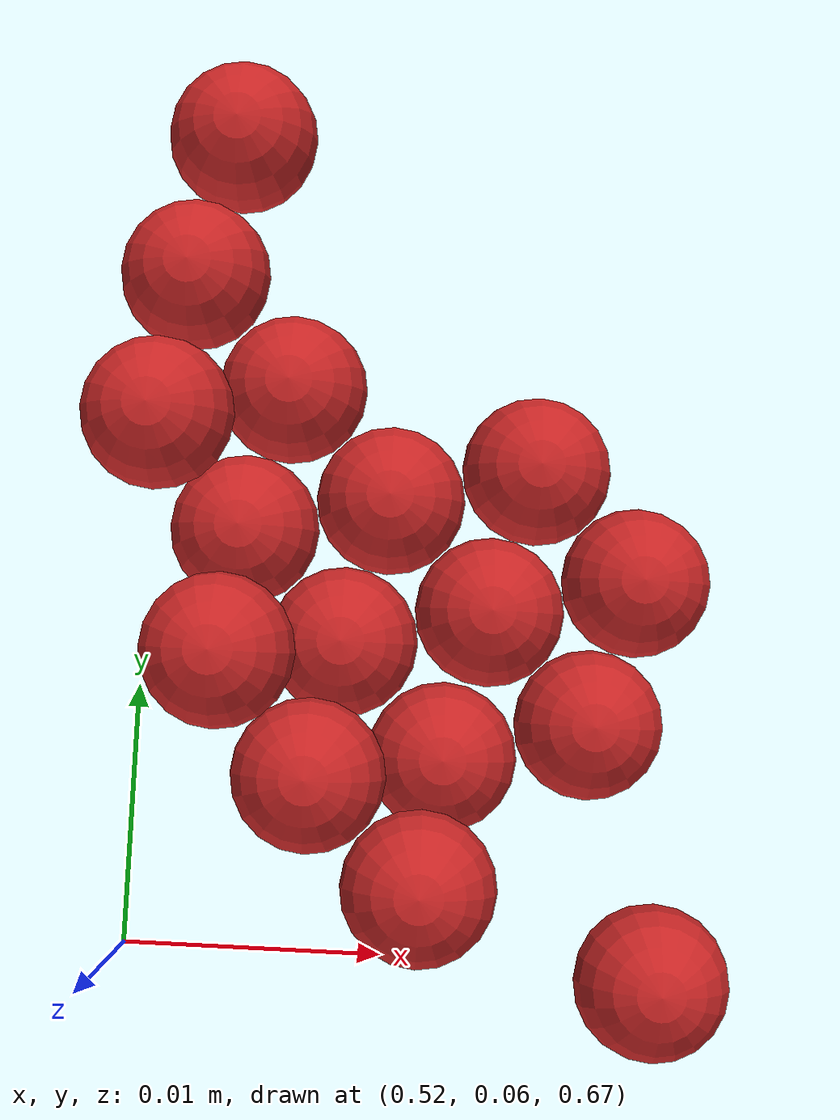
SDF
<sdf version="1.4">
 <world name="default">
  <model name="ground_plane">
   <static>1</static>
   <link name="link">
    <collision name="collision">
     <geometry><plane><normal>0 0 1</normal><size>100 100</size></plane></geometry>
     <surface><friction><ode><mu>100</mu><mu2>50</mu2></ode></friction></surface>
    </collision>
    <visual name="visual">
     <cast_shadows>0</cast_shadows>
     <geometry><plane><normal>0 0 1</normal><size>100 100</size></plane></geometry>
     <material>
      <script><uri>file://media/materials/scripts/gazebo.material</uri><name>Gazebo/Grey</name></script>
     </material>
    </visual>
    <velocity_decay><linear>0</linear><angular>0</angular></velocity_decay>
   </link>
  </model>
  <model name="sphere0">
   <pose>-0.002085 -0.000161 -0.026429 -0.000498 -0.00059 2.7e-05</pose>
   <link name="link">
    <pose>0.534545 0.067517 0.694885 0 -0 0</pose>
    <inertial>
     <mass>1e-08</mass>
     <inertia><ixx>4e-08</ixx><ixy>0</ixy><ixz>0</ixz><iyy>4e-08</iyy><iyz>0</iyz><izz>4e-08</izz></inertia>
    </inertial>
    <collision name="collision">
     <surface>
      <bounce><restitution_coefficient>0.5</restitution_coefficient><threshold>0</threshold></bounce>
      <contact><ode><kp>1e+08</kp><kd>1</kd></ode></contact>
      <friction><ode><mu>1e-06</mu><mu2>1e-06</mu2></ode></friction>
     </surface>
     <geometry><sphere><radius>0.003</radius></sphere></geometry>
    </collision>
    <visual name="visual">
     <geometry><sphere><radius>0.003</radius></sphere></geometry>
     <material>
      <script><uri>file://media/materials/scripts/gazebo.material</uri><name>Gazebo/Red</name></script>
     </material>
    </visual>
    <velocity_decay><linear>0</linear><angular>0</angular></velocity_decay>
   </link>
   <static>0</static>
  </model>
  <model name="sphere8">
   <pose>-0.013819 0.001396 -0.023412 0.000246 -0.000644 -0.000271</pose>
   <link name="link">
    <pose>0.534545 0.079517 0.694885 0 -0 0</pose>
    <inertial>
     <mass>1e-08</mass>
     <inertia><ixx>4e-08</ixx><ixy>0</ixy><ixz>0</ixz><iyy>4e-08</iyy><iyz>0</iyz><izz>4e-08</izz></inertia>
    </inertial>
    <collision name="collision">
     <surface>
      <bounce><restitution_coefficient>0.5</restitution_coefficient><threshold>0</threshold></bounce>
      <contact><ode><kp>1e+08</kp><kd>1</kd></ode></contact>
      <friction><ode><mu>1e-06</mu><mu2>1e-06</mu2></ode></friction>
     </surface>
     <geometry><sphere><radius>0.003</radius></sphere></geometry>
    </collision>
    <visual name="visual">
     <geometry><sphere><radius>0.003</radius></sphere></geometry>
     <material>
      <script><uri>file://media/materials/scripts/gazebo.material</uri><name>Gazebo/Red</name></script>
     </material>
    </visual>
    <velocity_decay><linear>0</linear><angular>0</angular></velocity_decay>
   </link>
   <static>0</static>
  </model>
  <model name="sphere20">
   <pose>-0.006531 -0.001627 -0.032068 -0.000328 -0.000208 1e-05</pose>
   <link name="link">
    <pose>0.534545 0.073517 0.700885 0 -0 0</pose>
    <inertial>
     <mass>1e-08</mass>
     <inertia><ixx>4e-08</ixx><ixy>0</ixy><ixz>0</ixz><iyy>4e-08</iyy><iyz>0</iyz><izz>4e-08</izz></inertia>
    </inertial>
    <collision name="collision">
     <surface>
      <bounce><restitution_coefficient>0.5</restitution_coefficient><threshold>0</threshold></bounce>
      <contact><ode><kp>1e+08</kp><kd>1</kd></ode></contact>
      <friction><ode><mu>1e-06</mu><mu2>1e-06</mu2></ode></friction>
     </surface>
     <geometry><sphere><radius>0.003</radius></sphere></geometry>
    </collision>
    <visual name="visual">
     <geometry><sphere><radius>0.003</radius></sphere></geometry>
     <material>
      <script><uri>file://media/materials/scripts/gazebo.material</uri><name>Gazebo/Red</name></script>
     </material>
    </visual>
    <velocity_decay><linear>0</linear><angular>0</angular></velocity_decay>
   </link>
   <static>0</static>
  </model>
  <model name="sphere21">
   <pose>-0.005341 0.006202 -0.031902 0.000493 0.000149 0</pose>
   <link name="link">
    <pose>0.540545 0.073517 0.700885 0 -0 0</pose>
    <inertial>
     <mass>1e-08</mass>
     <inertia><ixx>4e-08</ixx><ixy>0</ixy><ixz>0</ixz><iyy>4e-08</iyy><iyz>0</iyz><izz>4e-08</izz></inertia>
    </inertial>
    <collision name="collision">
     <surface>
      <bounce><restitution_coefficient>0.5</restitution_coefficient><threshold>0</threshold></bounce>
      <contact><ode><kp>1e+08</kp><kd>1</kd></ode></contact>
      <friction><ode><mu>1e-06</mu><mu2>1e-06</mu2></ode></friction>
     </surface>
     <geometry><sphere><radius>0.003</radius></sphere></geometry>
    </collision>
    <visual name="visual">
     <geometry><sphere><radius>0.003</radius></sphere></geometry>
     <material>
      <script><uri>file://media/materials/scripts/gazebo.material</uri><name>Gazebo/Red</name></script>
     </material>
    </visual>
    <velocity_decay><linear>0</linear><angular>0</angular></velocity_decay>
   </link>
   <static>0</static>
  </model>
  <model name="sphere24">
   <pose>-0.010826 -0.003438 -0.031703 -0.000501 -4.9e-05 -1.3e-05</pose>
   <link name="link">
    <pose>0.534545 0.079517 0.700885 0 -0 0</pose>
    <inertial>
     <mass>1e-08</mass>
     <inertia><ixx>4e-08</ixx><ixy>0</ixy><ixz>0</ixz><iyy>4e-08</iyy><iyz>0</iyz><izz>4e-08</izz></inertia>
    </inertial>
    <collision name="collision">
     <surface>
      <bounce><restitution_coefficient>0.5</restitution_coefficient><threshold>0</threshold></bounce>
      <contact><ode><kp>1e+08</kp><kd>1</kd></ode></contact>
      <friction><ode><mu>1e-06</mu><mu2>1e-06</mu2></ode></friction>
     </surface>
     <geometry><sphere><radius>0.003</radius></sphere></geometry>
    </collision>
    <visual name="visual">
     <geometry><sphere><radius>0.003</radius></sphere></geometry>
     <material>
      <script><uri>file://media/materials/scripts/gazebo.material</uri><name>Gazebo/Red</name></script>
     </material>
    </visual>
    <velocity_decay><linear>0</linear><angular>0</angular></velocity_decay>
   </link>
   <static>0</static>
  </model>
  <model name="sphere28">
   <pose>-0.01331 0.000935 -0.030878 -3.3e-05 -1.5e-05 -4.5e-05</pose>
   <link name="link">
    <pose>0.534545 0.085517 0.700885 0 -0 0</pose>
    <inertial>
     <mass>1e-08</mass>
     <inertia><ixx>4e-08</ixx><ixy>0</ixy><ixz>0</ixz><iyy>4e-08</iyy><iyz>0</iyz><izz>4e-08</izz></inertia>
    </inertial>
    <collision name="collision">
     <surface>
      <bounce><restitution_coefficient>0.5</restitution_coefficient><threshold>0</threshold></bounce>
      <contact><ode><kp>1e+08</kp><kd>1</kd></ode></contact>
      <friction><ode><mu>1e-06</mu><mu2>1e-06</mu2></ode></friction>
     </surface>
     <geometry><sphere><radius>0.003</radius></sphere></geometry>
    </collision>
    <visual name="visual">
     <geometry><sphere><radius>0.003</radius></sphere></geometry>
     <material>
      <script><uri>file://media/materials/scripts/gazebo.material</uri><name>Gazebo/Red</name></script>
     </material>
    </visual>
    <velocity_decay><linear>0</linear><angular>0</angular></velocity_decay>
   </link>
   <static>0</static>
  </model>
  <model name="sphere32">
   <pose>-0.007673 -0.000603 -0.035175 -1e-06 3.1e-05 1.2e-05</pose>
   <link name="link">
    <pose>0.534545 0.067517 0.706885 0 -0 0</pose>
    <inertial>
     <mass>1e-08</mass>
     <inertia><ixx>4e-08</ixx><ixy>0</ixy><ixz>0</ixz><iyy>4e-08</iyy><iyz>0</iyz><izz>4e-08</izz></inertia>
    </inertial>
    <collision name="collision">
     <surface>
      <bounce><restitution_coefficient>0.5</restitution_coefficient><threshold>0</threshold></bounce>
      <contact><ode><kp>1e+08</kp><kd>1</kd></ode></contact>
      <friction><ode><mu>1e-06</mu><mu2>1e-06</mu2></ode></friction>
     </surface>
     <geometry><sphere><radius>0.003</radius></sphere></geometry>
    </collision>
    <visual name="visual">
     <geometry><sphere><radius>0.003</radius></sphere></geometry>
     <material>
      <script><uri>file://media/materials/scripts/gazebo.material</uri><name>Gazebo/Red</name></script>
     </material>
    </visual>
    <velocity_decay><linear>0</linear><angular>0</angular></velocity_decay>
   </link>
   <static>0</static>
  </model>
  <model name="sphere48">
   <pose>-0.003327 -0.004383 -0.040555 3.4e-05 0.000126 -0.000348</pose>
   <link name="link">
    <pose>0.534545 0.067517 0.712885 0 -0 0</pose>
    <inertial>
     <mass>1e-08</mass>
     <inertia><ixx>4e-08</ixx><ixy>0</ixy><ixz>0</ixz><iyy>4e-08</iyy><iyz>0</iyz><izz>4e-08</izz></inertia>
    </inertial>
    <collision name="collision">
     <surface>
      <bounce><restitution_coefficient>0.5</restitution_coefficient><threshold>0</threshold></bounce>
      <contact><ode><kp>1e+08</kp><kd>1</kd></ode></contact>
      <friction><ode><mu>1e-06</mu><mu2>1e-06</mu2></ode></friction>
     </surface>
     <geometry><sphere><radius>0.003</radius></sphere></geometry>
    </collision>
    <visual name="visual">
     <geometry><sphere><radius>0.003</radius></sphere></geometry>
     <material>
      <script><uri>file://media/materials/scripts/gazebo.material</uri><name>Gazebo/Red</name></script>
     </material>
    </visual>
    <velocity_decay><linear>0</linear><angular>0</angular></velocity_decay>
   </link>
   <static>0</static>
  </model>
  <model name="sphere49">
   <pose>-0.002203 0.001489 -0.044404 -0.000408 -0.000683 0</pose>
   <link name="link">
    <pose>0.540545 0.067517 0.712885 0 -0 0</pose>
    <inertial>
     <mass>1e-08</mass>
     <inertia><ixx>4e-08</ixx><ixy>0</ixy><ixz>0</ixz><iyy>4e-08</iyy><iyz>0</iyz><izz>4e-08</izz></inertia>
    </inertial>
    <collision name="collision">
     <surface>
      <bounce><restitution_coefficient>0.5</restitution_coefficient><threshold>0</threshold></bounce>
      <contact><ode><kp>1e+08</kp><kd>1</kd></ode></contact>
      <friction><ode><mu>1e-06</mu><mu2>1e-06</mu2></ode></friction>
     </surface>
     <geometry><sphere><radius>0.003</radius></sphere></geometry>
    </collision>
    <visual name="visual">
     <geometry><sphere><radius>0.003</radius></sphere></geometry>
     <material>
      <script><uri>file://media/materials/scripts/gazebo.material</uri><name>Gazebo/Red</name></script>
     </material>
    </visual>
    <velocity_decay><linear>0</linear><angular>0</angular></velocity_decay>
   </link>
   <static>0</static>
  </model>
  <model name="sphere50">
   <pose>-0.006032 -0.007887 -0.041972 6.4e-05 -5.5e-05 0.000121</pose>
   <link name="link">
    <pose>0.546545 0.067517 0.712885 0 -0 0</pose>
    <inertial>
     <mass>1e-08</mass>
     <inertia><ixx>4e-08</ixx><ixy>0</ixy><ixz>0</ixz><iyy>4e-08</iyy><iyz>0</iyz><izz>4e-08</izz></inertia>
    </inertial>
    <collision name="collision">
     <surface>
      <bounce><restitution_coefficient>0.5</restitution_coefficient><threshold>0</threshold></bounce>
      <contact><ode><kp>1e+08</kp><kd>1</kd></ode></contact>
      <friction><ode><mu>1e-06</mu><mu2>1e-06</mu2></ode></friction>
     </surface>
     <geometry><sphere><radius>0.003</radius></sphere></geometry>
    </collision>
    <visual name="visual">
     <geometry><sphere><radius>0.003</radius></sphere></geometry>
     <material>
      <script><uri>file://media/materials/scripts/gazebo.material</uri><name>Gazebo/Red</name></script>
     </material>
    </visual>
    <velocity_decay><linear>0</linear><angular>0</angular></velocity_decay>
   </link>
   <static>0</static>
  </model>
  <model name="sphere52">
   <pose>-0.004991 0.004128 -0.044055 -0.00036 -8.8e-05 0</pose>
   <link name="link">
    <pose>0.534545 0.073517 0.712885 0 -0 0</pose>
    <inertial>
     <mass>1e-08</mass>
     <inertia><ixx>4e-08</ixx><ixy>0</ixy><ixz>0</ixz><iyy>4e-08</iyy><iyz>0</iyz><izz>4e-08</izz></inertia>
    </inertial>
    <collision name="collision">
     <surface>
      <bounce><restitution_coefficient>0.5</restitution_coefficient><threshold>0</threshold></bounce>
      <contact><ode><kp>1e+08</kp><kd>1</kd></ode></contact>
      <friction><ode><mu>1e-06</mu><mu2>1e-06</mu2></ode></friction>
     </surface>
     <geometry><sphere><radius>0.003</radius></sphere></geometry>
    </collision>
    <visual name="visual">
     <geometry><sphere><radius>0.003</radius></sphere></geometry>
     <material>
      <script><uri>file://media/materials/scripts/gazebo.material</uri><name>Gazebo/Red</name></script>
     </material>
    </visual>
    <velocity_decay><linear>0</linear><angular>0</angular></velocity_decay>
   </link>
   <static>0</static>
  </model>
  <model name="sphere53">
   <pose>-0.000935 0.001504 -0.044057 -8.1e-05 -0.000158 0</pose>
   <link name="link">
    <pose>0.540545 0.073517 0.712885 0 -0 0</pose>
    <inertial>
     <mass>1e-08</mass>
     <inertia><ixx>4e-08</ixx><ixy>0</ixy><ixz>0</ixz><iyy>4e-08</iyy><iyz>0</iyz><izz>4e-08</izz></inertia>
    </inertial>
    <collision name="collision">
     <surface>
      <bounce><restitution_coefficient>0.5</restitution_coefficient><threshold>0</threshold></bounce>
      <contact><ode><kp>1e+08</kp><kd>1</kd></ode></contact>
      <friction><ode><mu>1e-06</mu><mu2>1e-06</mu2></ode></friction>
     </surface>
     <geometry><sphere><radius>0.003</radius></sphere></geometry>
    </collision>
    <visual name="visual">
     <geometry><sphere><radius>0.003</radius></sphere></geometry>
     <material>
      <script><uri>file://media/materials/scripts/gazebo.material</uri><name>Gazebo/Red</name></script>
     </material>
    </visual>
    <velocity_decay><linear>0</linear><angular>0</angular></velocity_decay>
   </link>
   <static>0</static>
  </model>
  <model name="sphere56">
   <pose>-0.011176 -0.007659 -0.04041 0.000178 -0.000255 -0.000354</pose>
   <link name="link">
    <pose>0.534545 0.079517 0.712885 0 -0 0</pose>
    <inertial>
     <mass>1e-08</mass>
     <inertia><ixx>4e-08</ixx><ixy>0</ixy><ixz>0</ixz><iyy>4e-08</iyy><iyz>0</iyz><izz>4e-08</izz></inertia>
    </inertial>
    <collision name="collision">
     <surface>
      <bounce><restitution_coefficient>0.5</restitution_coefficient><threshold>0</threshold></bounce>
      <contact><ode><kp>1e+08</kp><kd>1</kd></ode></contact>
      <friction><ode><mu>1e-06</mu><mu2>1e-06</mu2></ode></friction>
     </surface>
     <geometry><sphere><radius>0.003</radius></sphere></geometry>
    </collision>
    <visual name="visual">
     <geometry><sphere><radius>0.003</radius></sphere></geometry>
     <material>
      <script><uri>file://media/materials/scripts/gazebo.material</uri><name>Gazebo/Red</name></script>
     </material>
    </visual>
    <velocity_decay><linear>0</linear><angular>0</angular></velocity_decay>
   </link>
   <static>0</static>
  </model>
  <model name="sphere60">
   <pose>-0.011586 0.006716 -0.043314 -0.000112 -0.000256 -0.000143</pose>
   <link name="link">
    <pose>0.534545 0.085517 0.712885 0 -0 0</pose>
    <inertial>
     <mass>1e-08</mass>
     <inertia><ixx>4e-08</ixx><ixy>0</ixy><ixz>0</ixz><iyy>4e-08</iyy><iyz>0</iyz><izz>4e-08</izz></inertia>
    </inertial>
    <collision name="collision">
     <surface>
      <bounce><restitution_coefficient>0.5</restitution_coefficient><threshold>0</threshold></bounce>
      <contact><ode><kp>1e+08</kp><kd>1</kd></ode></contact>
      <friction><ode><mu>1e-06</mu><mu2>1e-06</mu2></ode></friction>
     </surface>
     <geometry><sphere><radius>0.003</radius></sphere></geometry>
    </collision>
    <visual name="visual">
     <geometry><sphere><radius>0.003</radius></sphere></geometry>
     <material>
      <script><uri>file://media/materials/scripts/gazebo.material</uri><name>Gazebo/Red</name></script>
     </material>
    </visual>
    <velocity_decay><linear>0</linear><angular>0</angular></velocity_decay>
   </link>
   <static>0</static>
  </model>
  <model name="sphere64">
   <pose>-0.000806 0.006087 -0.04998 -4e-06 -8.1e-05 0</pose>
   <link name="link">
    <pose>0.534545 0.067517 0.718885 0 -0 0</pose>
    <inertial>
     <mass>1e-08</mass>
     <inertia><ixx>4e-08</ixx><ixy>0</ixy><ixz>0</ixz><iyy>4e-08</iyy><iyz>0</iyz><izz>4e-08</izz></inertia>
    </inertial>
    <collision name="collision">
     <surface>
      <bounce><restitution_coefficient>0.5</restitution_coefficient><threshold>0</threshold></bounce>
      <contact><ode><kp>1e+08</kp><kd>1</kd></ode></contact>
      <friction><ode><mu>1e-06</mu><mu2>1e-06</mu2></ode></friction>
     </surface>
     <geometry><sphere><radius>0.003</radius></sphere></geometry>
    </collision>
    <visual name="visual">
     <geometry><sphere><radius>0.003</radius></sphere></geometry>
     <material>
      <script><uri>file://media/materials/scripts/gazebo.material</uri><name>Gazebo/Red</name></script>
     </material>
    </visual>
    <velocity_decay><linear>0</linear><angular>0</angular></velocity_decay>
   </link>
   <static>0</static>
  </model>
  <model name="sphere72">
   <pose>-0.009171 0.002621 -0.049977 -6.7e-05 -8.5e-05 8.27181e-25</pose>
   <link name="link">
    <pose>0.534545 0.079517 0.718885 0 -0 0</pose>
    <inertial>
     <mass>1e-08</mass>
     <inertia><ixx>4e-08</ixx><ixy>0</ixy><ixz>0</ixz><iyy>4e-08</iyy><iyz>0</iyz><izz>4e-08</izz></inertia>
    </inertial>
    <collision name="collision">
     <surface>
      <bounce><restitution_coefficient>0.5</restitution_coefficient><threshold>0</threshold></bounce>
      <contact><ode><kp>1e+08</kp><kd>1</kd></ode></contact>
      <friction><ode><mu>1e-06</mu><mu2>1e-06</mu2></ode></friction>
     </surface>
     <geometry><sphere><radius>0.003</radius></sphere></geometry>
    </collision>
    <visual name="visual">
     <geometry><sphere><radius>0.003</radius></sphere></geometry>
     <material>
      <script><uri>file://media/materials/scripts/gazebo.material</uri><name>Gazebo/Red</name></script>
     </material>
    </visual>
    <velocity_decay><linear>0</linear><angular>0</angular></velocity_decay>
   </link>
   <static>0</static>
  </model>
 </world>
</sdf>
